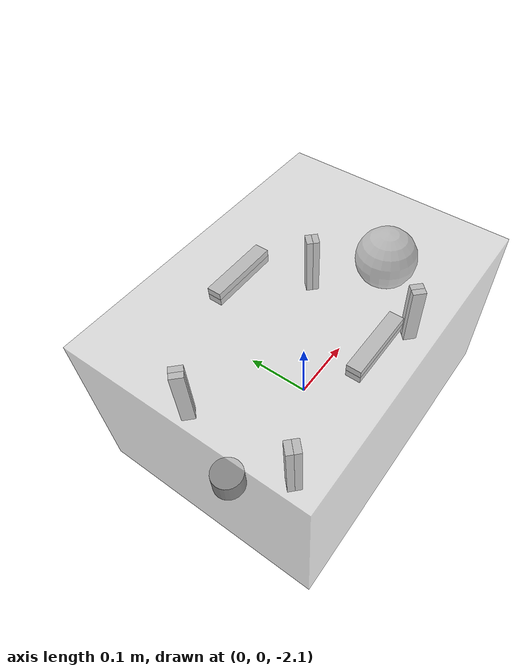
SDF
<sdf version="1.6">
 <world name="underwater">
  <plugin filename="gz-sim-physics-system" name="gz::sim::systems::Physics"/>
  <plugin filename="gz-sim-user-commands-system" name="gz::sim::systems::UserCommands"/>
  <plugin filename="gz-sim-scene-broadcaster-system" name="gz::sim::systems::SceneBroadcaster"/>
  <plugin filename="libgz-sim-imu-system.so" name="gz::sim::systems::Imu"/>
  <plugin filename="gz-sim-sensors-system" name="gz::sim::systems::Sensors">
   <render_engine>ogre2</render_engine>
  </plugin>
  <plugin filename="gz-sim-buoyancy-system" name="gz::sim::systems::Buoyancy">
   <graded_buoyancy>
    <default_density>1000</default_density>
    <density_change><above_depth>0</above_depth><density>1</density></density_change>
   </graded_buoyancy>
   <enable>br2_ping</enable>
  </plugin>
  <include><uri>https://fuel.gazebosim.org/1.0/OpenRobotics/models/Sun</uri></include>
  <include><uri>model://br2_ping</uri><pose>0 0 -2 0 0 0</pose></include>
 </world>
</sdf>

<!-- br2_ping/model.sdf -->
<sdf version="1.6">
  <model name="br2_ping">
    <pose>0 0 0 0 0 0</pose>

    <!-- BlueROV2 thruster reference: http://www.ardusub.com/introduction/features.html -->
    <!-- fluid_density: 1000 -->
    <!-- total_mass: 10.145 -->
    <!-- displaced_mass: 10.183 -->

    <link name="base_link">
      <inertial>
        <pose>0 0 0.011 0 0 0</pose>
        <mass>10</mass>
        <inertia>
          <ixx>0.09882496635029805</ixx>
          <ixy>0</ixy>
          <ixz>0</ixz>
          <iyy>0.17766246635029803</iyy>
          <iyz>0</iyz>
          <izz>0.2692441666666667</izz>
        </inertia>
      </inertial>

      <visual name="base_link_box">
        <pose>0 0 0 0 0 0</pose>
        <transparency>0.5</transparency>
        <geometry>
          <box>
            <size>0.457 0.338 0.25</size>
          </box>
        </geometry>
      </visual>

      <visual name="base_link_dome">
        <pose>0.2285 0 0 0 0 0</pose>
        <geometry>
          <sphere>
            <radius>0.05</radius>
          </sphere>
        </geometry>
        <material>
          <emissive>0 1 0 0</emissive>
        </material>
      </visual>

      <!-- Collision volume * fluid_density == displaced mass, used by BuoyancyPlugin -->
      <collision name="base_link_collision">
        <pose>0 0 0.06 0 0 0</pose>
        <geometry>
          <box>
            <size>0.457 0.338 0.06592389263656727</size>
          </box>
        </geometry>
      </collision>

      <!-- IMU sensor gyro and accel data will be sent to ArduSub -->
      <sensor name="imu_sensor" type="imu">
        <!-- Transform from the Gazebo body frame (x-forward, y-left, z-up)
             to the ArduPilot body frame (x-forward, y-right, z-down) -->
        <pose>0 0 0 3.141592653589793 0 0</pose>
        <always_on>1</always_on>
        <update_rate>1000.0</update_rate>
      </sensor>

    </link>

    <!-- Hydrodynamics plugin -->
    <plugin
        filename="gz-sim-hydrodynamics-system"
        name="gz::sim::systems::Hydrodynamics">
      <link_name>base_link</link_name>
      <water_density>1000</water_density>
      <!-- Added mass: -->
      <xDotU>0</xDotU>
      <yDotV>0</yDotV>
      <zDotW>0</zDotW>
      <kDotP>0</kDotP>
      <mDotQ>0</mDotQ>
      <nDotR>0</nDotR>
      <!-- First order stability derivative: -->
      <xU>0</xU>
      <yV>0</yV>
      <zW>0</zW>
      <kP>0</kP>
      <mQ>0</mQ>
      <nR>0</nR>
      <!-- Second order stability derivative: -->
      <xUabsU>-33.800000000000004</xUabsU>
      <yVabsV>-54.26875</yVabsV>
      <zWabsW>-73.37135</zWabsW>
      <kPabsP>-4.0</kPabsP>
      <mQabsQ>-4.0</mQabsQ>
      <nRabsR>-4.0</nRabsR>
    </plugin>

    <link name="thruster1">
      <pose>0.15 -0.09 0 -1.5707963267948966 1.5707963267948966 -0.7853981633974483</pose>
      <visual name="thruster_front">
        <pose>0 0 0.005 0 0 0</pose>
        <geometry>
          <box>
            <size>0.1 0.02 0.01</size>
          </box>
        </geometry>
        <material>
          <emissive>0 0 1 0</emissive>
        </material>
      </visual>
      <visual name="thruster_back">
        <pose>0 0 -0.005 0 0 0</pose>
        <geometry>
          <box>
            <size>0.1 0.02 0.01</size>
          </box>
        </geometry>
        <material>
          <emissive>1 0 0 0</emissive>
        </material>
      </visual>
      <inertial>
        <mass>0.002</mass>
        <inertia>
          <ixx>0.001</ixx>
          <ixy>0</ixy>
          <ixz>0</ixz>
          <iyy>0.001</iyy>
          <iyz>0</iyz>
          <izz>0.001</izz>
        </inertia>
      </inertial>
    </link>

    <link name="thruster2">
      <pose>0.15 0.09 0 -1.5707963267948966 1.5707963267948966 -2.356194490192345</pose>
      <visual name="thruster_front">
        <pose>0 0 0.005 0 0 0</pose>
        <geometry>
          <box>
            <size>0.1 0.02 0.01</size>
          </box>
        </geometry>
        <material>
          <emissive>0 0 1 0</emissive>
        </material>
      </visual>
      <visual name="thruster_back">
        <pose>0 0 -0.005 0 0 0</pose>
        <geometry>
          <box>
            <size>0.1 0.02 0.01</size>
          </box>
        </geometry>
        <material>
          <emissive>1 0 0 0</emissive>
        </material>
      </visual>
      <inertial>
        <mass>0.002</mass>
        <inertia>
          <ixx>0.001</ixx>
          <ixy>0</ixy>
          <ixz>0</ixz>
          <iyy>0.001</iyy>
          <iyz>0</iyz>
          <izz>0.001</izz>
        </inertia>
      </inertial>
    </link>

    <link name="thruster3">
      <pose>-0.15 -0.09 0 -1.5707963267948966 1.5707963267948966 0.7853981633974483</pose>
      <visual name="thruster_front">
        <pose>0 0 0.005 0 0 0</pose>
        <geometry>
          <box>
            <size>0.1 0.02 0.01</size>
          </box>
        </geometry>
        <material>
          <emissive>0 0 1 0</emissive>
        </material>
      </visual>
      <visual name="thruster_back">
        <pose>0 0 -0.005 0 0 0</pose>
        <geometry>
          <box>
            <size>0.1 0.02 0.01</size>
          </box>
        </geometry>
        <material>
          <emissive>1 0 0 0</emissive>
        </material>
      </visual>
      <inertial>
        <mass>0.002</mass>
        <inertia>
          <ixx>0.001</ixx>
          <ixy>0</ixy>
          <ixz>0</ixz>
          <iyy>0.001</iyy>
          <iyz>0</iyz>
          <izz>0.001</izz>
        </inertia>
      </inertial>
    </link>

    <link name="thruster4">
      <pose>-0.15 0.09 0 -1.5707963267948966 1.5707963267948966 2.356194490192345</pose>
      <visual name="thruster_front">
        <pose>0 0 0.005 0 0 0</pose>
        <geometry>
          <box>
            <size>0.1 0.02 0.01</size>
          </box>
        </geometry>
        <material>
          <emissive>0 0 1 0</emissive>
        </material>
      </visual>
      <visual name="thruster_back">
        <pose>0 0 -0.005 0 0 0</pose>
        <geometry>
          <box>
            <size>0.1 0.02 0.01</size>
          </box>
        </geometry>
        <material>
          <emissive>1 0 0 0</emissive>
        </material>
      </visual>
      <inertial>
        <mass>0.002</mass>
        <inertia>
          <ixx>0.001</ixx>
          <ixy>0</ixy>
          <ixz>0</ixz>
          <iyy>0.001</iyy>
          <iyz>0</iyz>
          <izz>0.001</izz>
        </inertia>
      </inertial>
    </link>

    <link name="thruster5">
      <pose>0 -0.105 0.09 0 0 0</pose>
      <visual name="thruster_front">
        <pose>0 0 0.005 0 0 0</pose>
        <geometry>
          <box>
            <size>0.1 0.02 0.01</size>
          </box>
        </geometry>
        <material>
          <emissive>0 0 1 0</emissive>
        </material>
      </visual>
      <visual name="thruster_back">
        <pose>0 0 -0.005 0 0 0</pose>
        <geometry>
          <box>
            <size>0.1 0.02 0.01</size>
          </box>
        </geometry>
        <material>
          <emissive>1 0 0 0</emissive>
        </material>
      </visual>
      <inertial>
        <mass>0.002</mass>
        <inertia>
          <ixx>0.001</ixx>
          <ixy>0</ixy>
          <ixz>0</ixz>
          <iyy>0.001</iyy>
          <iyz>0</iyz>
          <izz>0.001</izz>
        </inertia>
      </inertial>
    </link>

    <link name="thruster6">
      <pose>0 0.105 0.09 0 0 0</pose>
      <visual name="thruster_front">
        <pose>0 0 0.005 0 0 0</pose>
        <geometry>
          <box>
            <size>0.1 0.02 0.01</size>
          </box>
        </geometry>
        <material>
          <emissive>0 0 1 0</emissive>
        </material>
      </visual>
      <visual name="thruster_back">
        <pose>0 0 -0.005 0 0 0</pose>
        <geometry>
          <box>
            <size>0.1 0.02 0.01</size>
          </box>
        </geometry>
        <material>
          <emissive>1 0 0 0</emissive>
        </material>
      </visual>
      <inertial>
        <mass>0.002</mass>
        <inertia>
          <ixx>0.001</ixx>
          <ixy>0</ixy>
          <ixz>0</ixz>
          <iyy>0.001</iyy>
          <iyz>0</iyz>
          <izz>0.001</izz>
        </inertia>
      </inertial>
    </link>

    <joint name="thruster1_joint" type="revolute">
      <parent>base_link</parent>
      <child>thruster1</child>
      <axis>
        <xyz>0 0 -1</xyz>
      </axis>
    </joint>

    <joint name="thruster2_joint" type="revolute">
      <parent>base_link</parent>
      <child>thruster2</child>
      <axis>
        <xyz>0 0 -1</xyz>
      </axis>
    </joint>

    <joint name="thruster3_joint" type="revolute">
      <parent>base_link</parent>
      <child>thruster3</child>
      <axis>
        <xyz>0 0 -1</xyz>
      </axis>
    </joint>

    <joint name="thruster4_joint" type="revolute">
      <parent>base_link</parent>
      <child>thruster4</child>
      <axis>
        <xyz>0 0 -1</xyz>
      </axis>
    </joint>

    <joint name="thruster5_joint" type="revolute">
      <parent>base_link</parent>
      <child>thruster5</child>
      <axis>
        <xyz>0 0 -1</xyz>
      </axis>
    </joint>

    <joint name="thruster6_joint" type="revolute">
      <parent>base_link</parent>
      <child>thruster6</child>
      <axis>
        <xyz>0 0 -1</xyz>
      </axis>
    </joint>

    <plugin
        filename="gz-sim-thruster-system"
        name="gz::sim::systems::Thruster">
      <namespace>bluerov2</namespace>
      <joint_name>thruster1_joint</joint_name>
      <thrust_coefficient>0.02</thrust_coefficient>
      <fluid_density>1000</fluid_density>
      <propeller_diameter>0.1</propeller_diameter>
      <velocity_control>true</velocity_control>
      <use_angvel_cmd>False</use_angvel_cmd>
    </plugin>

    <plugin
        filename="gz-sim-thruster-system"
        name="gz::sim::systems::Thruster">
      <namespace>bluerov2</namespace>
      <joint_name>thruster2_joint</joint_name>
      <thrust_coefficient>0.02</thrust_coefficient>
      <fluid_density>1000</fluid_density>
      <propeller_diameter>0.1</propeller_diameter>
      <velocity_control>true</velocity_control>
      <use_angvel_cmd>False</use_angvel_cmd>
    </plugin>

    <plugin
        filename="gz-sim-thruster-system"
        name="gz::sim::systems::Thruster">
      <namespace>bluerov2</namespace>
      <joint_name>thruster3_joint</joint_name>
      <!-- Reverse spin to balance torque -->
      <thrust_coefficient>-0.02</thrust_coefficient>
      <fluid_density>1000</fluid_density>
      <propeller_diameter>0.1</propeller_diameter>
      <velocity_control>true</velocity_control>
      <use_angvel_cmd>False</use_angvel_cmd>
    </plugin>

    <plugin
        filename="gz-sim-thruster-system"
        name="gz::sim::systems::Thruster">
      <namespace>bluerov2</namespace>
      <joint_name>thruster4_joint</joint_name>
      <!-- Reverse spin to balance torque -->
      <thrust_coefficient>-0.02</thrust_coefficient>
      <fluid_density>1000</fluid_density>
      <propeller_diameter>0.1</propeller_diameter>
      <velocity_control>true</velocity_control>
      <use_angvel_cmd>False</use_angvel_cmd>
    </plugin>

    <plugin
        filename="gz-sim-thruster-system"
        name="gz::sim::systems::Thruster">
      <namespace>bluerov2</namespace>
      <joint_name>thruster5_joint</joint_name>
      <thrust_coefficient>0.02</thrust_coefficient>
      <fluid_density>1000</fluid_density>
      <propeller_diameter>0.1</propeller_diameter>
      <velocity_control>true</velocity_control>
      <use_angvel_cmd>False</use_angvel_cmd>
    </plugin>

    <plugin
        filename="gz-sim-thruster-system"
        name="gz::sim::systems::Thruster">
      <namespace>bluerov2</namespace>
      <joint_name>thruster6_joint</joint_name>
      <!-- Reverse spin to balance torque -->
      <thrust_coefficient>-0.02</thrust_coefficient>
      <fluid_density>1000</fluid_density>
      <propeller_diameter>0.1</propeller_diameter>
      <velocity_control>true</velocity_control>
      <use_angvel_cmd>False</use_angvel_cmd>
    </plugin>

    <link name='ping_link'>
      <pose>-0.18 0 -0.095 0 0 0</pose>
      <inertial>
        <mass>0.133</mass>
        <inertia>
          <ixx>0.001</ixx>
          <ixy>0</ixy>
          <ixz>0</ixz>
          <iyy>0.001</iyy>
          <iyz>0</iyz>
          <izz>0.001</izz>
        </inertia>
      </inertial>

      <visual name="ping_visual">
        <geometry>
          <cylinder>
            <length>0.035</length>
            <radius>0.024</radius>
          </cylinder>
        </geometry>
        <material>
          <emissive>0 1 0 0</emissive>
        </material>
      </visual>

      <!-- Use a gpu_lidar sensor to emulate a Ping sonar sensor -->
      <sensor name='ping_sonar' type='gpu_lidar'>
        <always_on>1</always_on>
        <update_rate>20</update_rate>
        <visualize>1</visualize>
        <topic>ping_link/sensor/sonar</topic>
        <pose>0 0 0 0 1.5707963267948966 0</pose>
        <ray>
          <!-- TODO improve this model -->
          <scan>
            <horizontal>
              <samples>5</samples>
              <resolution>1</resolution>
              <min_angle>-0.14835</min_angle>
              <max_angle>0.14835</max_angle>
            </horizontal>
            <vertical>
              <samples>3</samples>
              <resolution>1</resolution>
              <min_angle>0</min_angle>
              <max_angle>0.14835</max_angle>
            </vertical>
          </scan>
          <range>
            <min>0.2</min>
            <max>50</max>
            <resolution>0.02</resolution>
          </range>
          <noise>
            <type>gaussian</type>
            <mean>0.1</mean>
            <stddev>0.005</stddev>
          </noise>
        </ray>
      </sensor>
    </link>

    <joint name='ping_joint' type='revolute'>
      <parent>base_link</parent>
      <child>ping_link</child>
      <axis>
        <xyz>0 0 1</xyz>
      </axis>
    </joint>

    <plugin name="ArduPilotPlugin" filename="libArduPilotPlugin.so">
      <!-- Port settings -->
      <fdm_addr>127.0.0.1</fdm_addr>
      <fdm_port_in>9002</fdm_port_in>
      <connectionTimeoutMaxCount>5</connectionTimeoutMaxCount>
      <lock_step>1</lock_step>

      <!-- Transform from the Gazebo body frame (x-forward, y-left, z-up)
           to the ArduPilot body frame (x-forward, y-right, z-down) -->
      <modelXYZToAirplaneXForwardZDown>0 0 0 3.141592653589793 0 0</modelXYZToAirplaneXForwardZDown>

      <!-- Transform from the Gazebo world frame (ENU)
           to the ArduPilot world frame (NED) -->
      <gazeboXYZToNED>0 0 0 3.141592653589793 0 1.5707963267948966</gazeboXYZToNED>

      <!-- Sensors -->
      <imuName>imu_sensor</imuName>

      <!-- Thrusters -->
      <control channel="0">
        <jointName>thruster1_joint</jointName>
        <servo_min>1100</servo_min>
        <servo_max>1900</servo_max>
        <type>COMMAND</type>
        <cmd_topic>/model/bluerov2/joint/thruster1_joint/cmd_thrust</cmd_topic>
        <offset>-0.5</offset>
        <multiplier>100</multiplier>
      </control>
      <control channel="1">
        <jointName>thruster2_joint</jointName>
        <servo_min>1100</servo_min>
        <servo_max>1900</servo_max>
        <type>COMMAND</type>
        <cmd_topic>/model/bluerov2/joint/thruster2_joint/cmd_thrust</cmd_topic>
        <offset>-0.5</offset>
        <multiplier>100</multiplier>
      </control>
      <control channel="2">
        <jointName>thruster3_joint</jointName>
        <servo_min>1100</servo_min>
        <servo_max>1900</servo_max>
        <type>COMMAND</type>
        <cmd_topic>/model/bluerov2/joint/thruster3_joint/cmd_thrust</cmd_topic>
        <offset>-0.5</offset>
        <multiplier>100</multiplier>
      </control>
      <control channel="3">
        <jointName>thruster4_joint</jointName>
        <servo_min>1100</servo_min>
        <servo_max>1900</servo_max>
        <type>COMMAND</type>
        <cmd_topic>/model/bluerov2/joint/thruster4_joint/cmd_thrust</cmd_topic>
        <offset>-0.5</offset>
        <multiplier>100</multiplier>
      </control>
      <control channel="4">
        <jointName>thruster5_joint</jointName>
        <servo_min>1100</servo_min>
        <servo_max>1900</servo_max>
        <type>COMMAND</type>
        <cmd_topic>/model/bluerov2/joint/thruster5_joint/cmd_thrust</cmd_topic>
        <offset>-0.5</offset>
        <multiplier>100</multiplier>
      </control>
      <control channel="5">
        <jointName>thruster6_joint</jointName>
        <servo_min>1100</servo_min>
        <servo_max>1900</servo_max>
        <type>COMMAND</type>
        <cmd_topic>/model/bluerov2/joint/thruster6_joint/cmd_thrust</cmd_topic>
        <offset>-0.5</offset>
        <multiplier>100</multiplier>
      </control>

      <sensor>
        <type>sonar</type>
        <index>1</index>
        <topic>ping_link/sensor/sonar</topic>
      </sensor>

    </plugin>

  </model>
</sdf>
